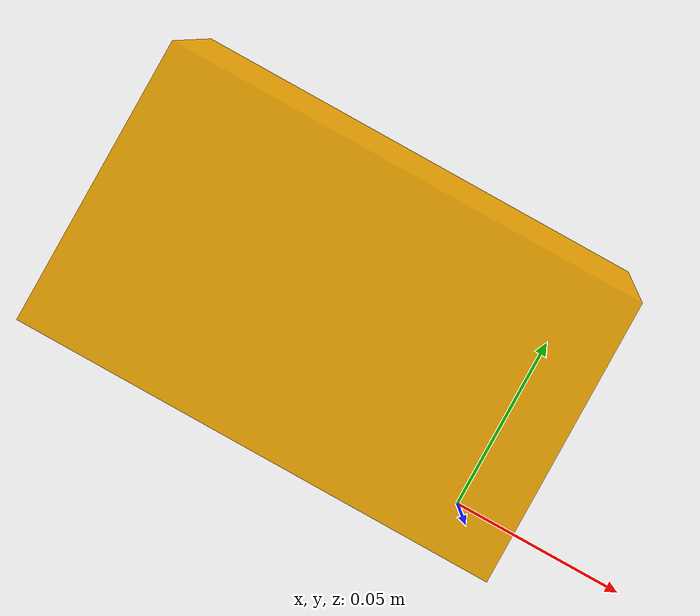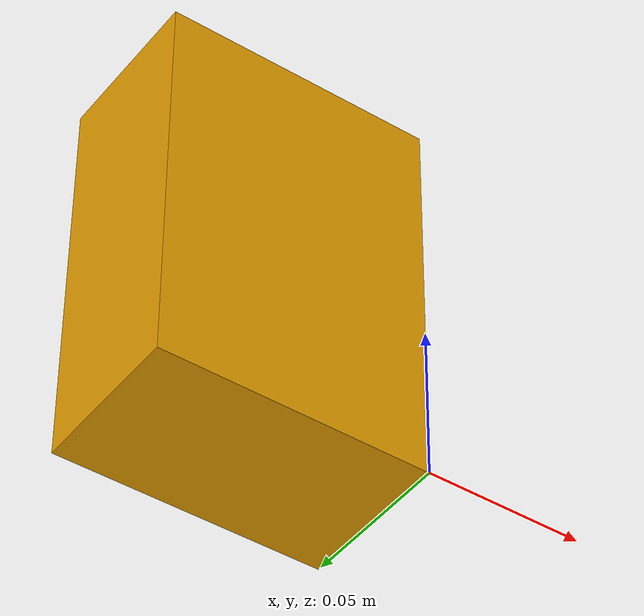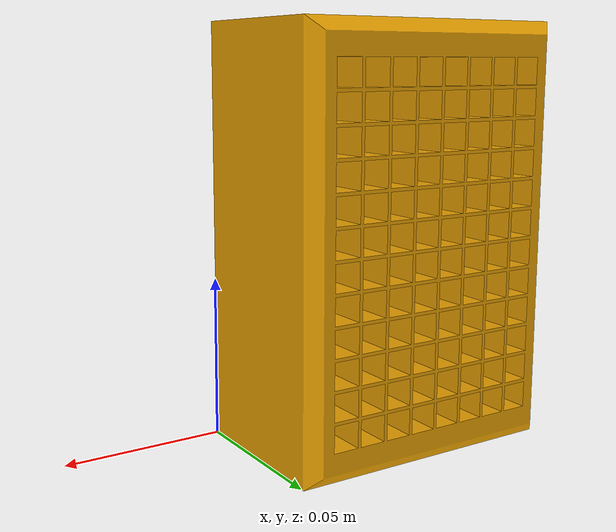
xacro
<?xml version="1.0" ?>
<robot xmlns:xacro="http://www.ros.org/wiki/xacro" name="tiprack_96_high">
    <link name='plate_link'>
      <visual name='visual'>
        <geometry>
          <mesh filename="meshes/tiprack_96_high.stl"/>
        </geometry>
        <material name="clay" />
      </visual>
    </link>
</robot>
